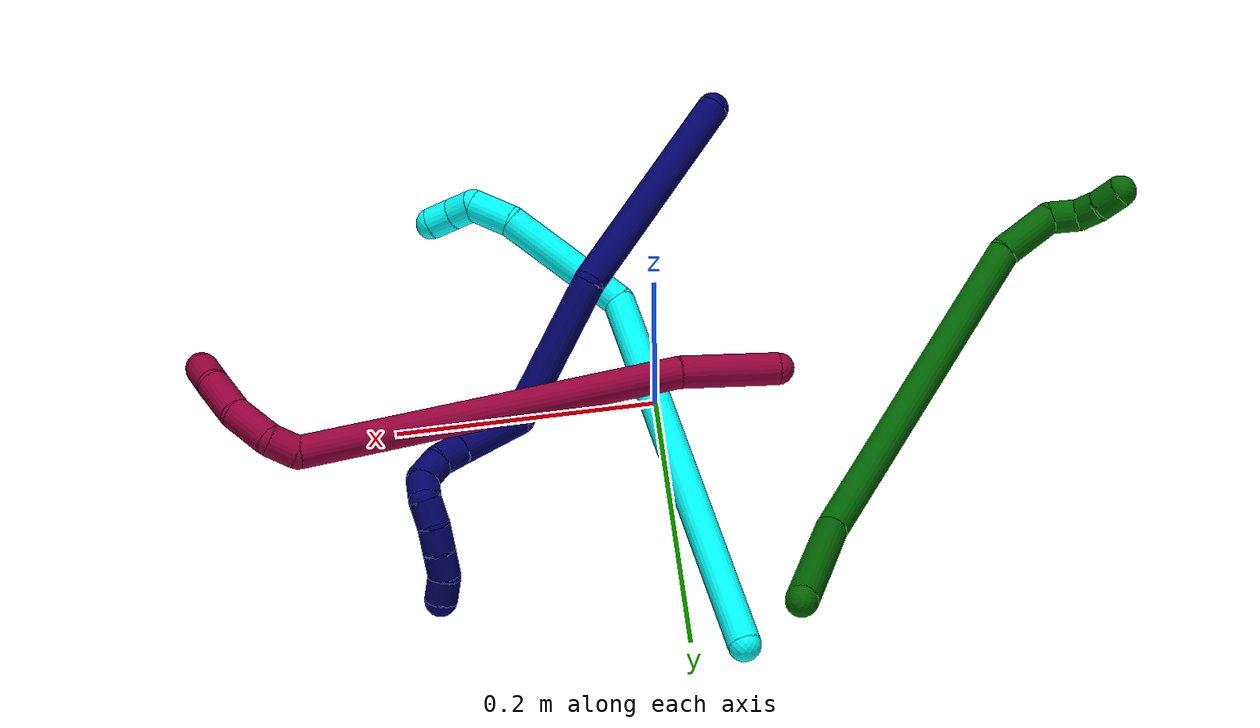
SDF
<sdf version="1.7">
 <world name="default">
  <model name="photoneo_s_sensor">
   <static>1</static>
   <pose>0 0 2 1.57079 1.57079 3.14159</pose>
   <link name="link">
    <inertial><mass>0.1</mass></inertial>
    <sensor name="sensor" type="depth">
     <update_rate>30</update_rate>
     <camera>
      <horizontal_fov>1.22</horizontal_fov>
      <image><width>1920</width><height>1200</height><format>B8G8R8</format></image>
      <clip><near>0.1</near><far>4</far></clip>
      <depth_camera><output>points</output></depth_camera>
     </camera>
     <plugin name="camera_plugin" filename="libgazebo_ros_depth_camera.so">
      <baseline>0.2</baseline>
      <alwaysOn>1</alwaysOn>
      <updateRate>0.0</updateRate>
      <cameraName>camera_ir</cameraName>
      <imageTopicName>/camera/color/image_raw</imageTopicName>
      <cameraInfoTopicName>/camera/color/camera_info</cameraInfoTopicName>
      <depthImageTopicName>/camera/depth/image_raw</depthImageTopicName>
      <depthImageCameraInfoTopicName>/camera/depth/camera_info</depthImageCameraInfoTopicName>
      <pointCloudTopicName>/camera/depth/points</pointCloudTopicName>
      <frameName>fr_optical</frameName>
      <pointCloudCutoff>0.1</pointCloudCutoff>
      <pointCloudCutoffMax>2.0</pointCloudCutoffMax>
      <distortionK1>0</distortionK1>
      <distortionK2>0</distortionK2>
      <distortionK3>0</distortionK3>
      <distortionT1>0</distortionT1>
      <distortionT2>0</distortionT2>
      <CxPrime>0</CxPrime>
      <Cx>0</Cx>
      <Cy>0</Cy>
      <focalLength>0</focalLength>
      <hackBaseline>0</hackBaseline>
     </plugin>
    </sensor>
   </link>
  </model>
  <model name="bin">
   <static>1</static>
   <link name="bottom">
    <collision name="collision-bottom">
     <pose>0 0 -0.01 0 -0 0</pose>
     <geometry><box><size>0.8 0.6 0.02</size></box></geometry>
     <surface>
      <friction><ode><mu>100</mu><mu2>100</mu2></ode></friction>
      <contact><collide_bitmask>65535</collide_bitmask></contact>
     </surface>
    </collision>
   </link>
   <link name="west_wall">
    <collision name="collision-west_wall">
     <pose>-0.41 0 0.1 0 -0 0</pose>
     <geometry><box><size>0.02 0.6 0.2</size></box></geometry>
     <surface>
      <friction><ode><mu>100</mu><mu2>100</mu2></ode></friction>
      <contact><collide_bitmask>65535</collide_bitmask></contact>
     </surface>
    </collision>
   </link>
   <link name="east_wall">
    <collision name="collision-east_wall">
     <pose>0.41 0 0.1 0 -0 0</pose>
     <geometry><box><size>0.02 0.6 0.2</size></box></geometry>
     <surface>
      <friction><ode><mu>100</mu><mu2>100</mu2></ode></friction>
      <contact><collide_bitmask>65535</collide_bitmask></contact>
     </surface>
    </collision>
   </link>
   <link name="south_wall">
    <collision name="collision-south_wall">
     <pose>0 -0.31 0.1 0 -0 0</pose>
     <geometry><box><size>0.8 0.02 0.2</size></box></geometry>
     <surface>
      <friction><ode><mu>100</mu><mu2>100</mu2></ode></friction>
      <contact><collide_bitmask>65535</collide_bitmask></contact>
     </surface>
    </collision>
   </link>
   <link name="north_wall">
    <collision name="collision-north_wall">
     <pose>0 0.31 0.1 0 -0 0</pose>
     <geometry><box><size>0.8 0.02 0.2</size></box></geometry>
     <surface>
      <friction><ode><mu>100</mu><mu2>100</mu2></ode></friction>
      <contact><collide_bitmask>65535</collide_bitmask></contact>
     </surface>
    </collision>
   </link>
  </model>
  <model name="3">
   <static>0</static>
   <link name="3">
    <collision name="collision-cylinder-e_1_1_4">
     <pose>0.051969 -0.143662 0.049265 1.24044 0.329693 0.236528</pose>
     <geometry><cylinder><radius>0.0125</radius><length>0.321039</length></cylinder></geometry>
     <surface>
      <friction><ode><mu>1.16</mu><mu2>1.16</mu2><slip1>0</slip1><slip2>0</slip2></ode></friction>
      <contact><ode><kp>1e+06</kp><kd>1</kd><max_vel>0</max_vel><min_depth>0.001</min_depth></ode></contact>
     </surface>
    </collision>
    <visual name="visual-cylinder-e_1_1_4">
     <pose>0.051969 -0.143662 0.049265 1.24044 0.329693 0.236528</pose>
     <geometry><cylinder><radius>0.0125</radius><length>0.321039</length></cylinder></geometry>
     <material><ambient>0.003922 1 0.996078 1</ambient></material>
    </visual>
    <collision name="collision-cylinder-e_2_4_5">
     <pose>0.147126 -0.316846 0.093467 1.74066 0.964408 1.11119</pose>
     <geometry><cylinder><radius>0.0125</radius><length>0.105118</length></cylinder></geometry>
     <surface>
      <friction><ode><mu>1.16</mu><mu2>1.16</mu2><slip1>0</slip1><slip2>0</slip2></ode></friction>
      <contact><ode><kp>1e+06</kp><kd>1</kd><max_vel>0</max_vel><min_depth>0.001</min_depth></ode></contact>
     </surface>
    </collision>
    <visual name="visual-cylinder-e_2_4_5">
     <pose>0.147126 -0.316846 0.093467 1.74066 0.964408 1.11119</pose>
     <geometry><cylinder><radius>0.0125</radius><length>0.105118</length></cylinder></geometry>
     <material><ambient>0.003922 1 0.996078 1</ambient></material>
    </visual>
    <collision name="collision-cylinder-e_3_5_6">
     <pose>0.201907 -0.357052 0.082745 2.05787 0.764428 1.17756</pose>
     <geometry><cylinder><radius>0.0125</radius><length>0.033501</length></cylinder></geometry>
     <surface>
      <friction><ode><mu>1.16</mu><mu2>1.16</mu2><slip1>0</slip1><slip2>0</slip2></ode></friction>
      <contact><ode><kp>1e+06</kp><kd>1</kd><max_vel>0</max_vel><min_depth>0.001</min_depth></ode></contact>
     </surface>
    </collision>
    <visual name="visual-cylinder-e_3_5_6">
     <pose>0.201907 -0.357052 0.082745 2.05787 0.764428 1.17756</pose>
     <geometry><cylinder><radius>0.0125</radius><length>0.033501</length></cylinder></geometry>
     <material><ambient>0.003922 1 0.996078 1</ambient></material>
    </visual>
    <collision name="collision-cylinder-e_4_6_7">
     <pose>0.214832 -0.373016 0.068661 2.58184 0.133138 0.45584</pose>
     <geometry><cylinder><radius>0.0125</radius><length>0.020063</length></cylinder></geometry>
     <surface>
      <friction><ode><mu>1.16</mu><mu2>1.16</mu2><slip1>0</slip1><slip2>0</slip2></ode></friction>
      <contact><ode><kp>1e+06</kp><kd>1</kd><max_vel>0</max_vel><min_depth>0.001</min_depth></ode></contact>
     </surface>
    </collision>
    <visual name="visual-cylinder-e_4_6_7">
     <pose>0.214832 -0.373016 0.068661 2.58184 0.133138 0.45584</pose>
     <geometry><cylinder><radius>0.0125</radius><length>0.020063</length></cylinder></geometry>
     <material><ambient>0.003922 1 0.996078 1</ambient></material>
    </visual>
    <collision name="collision-cylinder-e_5_7_2">
     <pose>0.218734 -0.382164 0.051222 2.73612 0.256272 1.11977</pose>
     <geometry><cylinder><radius>0.0125</radius><length>0.02028</length></cylinder></geometry>
     <surface>
      <friction><ode><mu>1.16</mu><mu2>1.16</mu2><slip1>0</slip1><slip2>0</slip2></ode></friction>
      <contact><ode><kp>1e+06</kp><kd>1</kd><max_vel>0</max_vel><min_depth>0.001</min_depth></ode></contact>
     </surface>
    </collision>
    <visual name="visual-cylinder-e_5_7_2">
     <pose>0.218734 -0.382164 0.051222 2.73612 0.256272 1.11977</pose>
     <geometry><cylinder><radius>0.0125</radius><length>0.02028</length></cylinder></geometry>
     <material><ambient>0.003922 1 0.996078 1</ambient></material>
    </visual>
    <collision name="collision-sphere-2">
     <pose>0.221304 -0.386033 0.042209 0 -0 0</pose>
     <geometry><sphere><radius>0.0125</radius></sphere></geometry>
     <surface>
      <friction><ode><mu>1.16</mu><mu2>1.16</mu2><slip1>0</slip1><slip2>0</slip2></ode></friction>
      <contact><ode><kp>1e+06</kp><kd>1</kd><max_vel>0</max_vel><min_depth>0.001</min_depth></ode></contact>
     </surface>
    </collision>
    <visual name="visual-sphere-2">
     <pose>0.221304 -0.386033 0.042209 0 -0 0</pose>
     <geometry><sphere><radius>0.0125</radius></sphere></geometry>
     <material><ambient>0.003922 1 0.996078 1</ambient></material>
    </visual>
    <collision name="collision-sphere-7">
     <pose>0.216164 -0.378295 0.060235 0 -0 0</pose>
     <geometry><sphere><radius>0.0125</radius></sphere></geometry>
     <surface>
      <friction><ode><mu>1.16</mu><mu2>1.16</mu2><slip1>0</slip1><slip2>0</slip2></ode></friction>
      <contact><ode><kp>1e+06</kp><kd>1</kd><max_vel>0</max_vel><min_depth>0.001</min_depth></ode></contact>
     </surface>
    </collision>
    <visual name="visual-sphere-7">
     <pose>0.216164 -0.378295 0.060235 0 -0 0</pose>
     <geometry><sphere><radius>0.0125</radius></sphere></geometry>
     <material><ambient>0.003922 1 0.996078 1</ambient></material>
    </visual>
    <collision name="collision-sphere-6">
     <pose>0.213501 -0.367736 0.077086 0 -0 0</pose>
     <geometry><sphere><radius>0.0125</radius></sphere></geometry>
     <surface>
      <friction><ode><mu>1.16</mu><mu2>1.16</mu2><slip1>0</slip1><slip2>0</slip2></ode></friction>
      <contact><ode><kp>1e+06</kp><kd>1</kd><max_vel>0</max_vel><min_depth>0.001</min_depth></ode></contact>
     </surface>
    </collision>
    <visual name="visual-sphere-6">
     <pose>0.213501 -0.367736 0.077086 0 -0 0</pose>
     <geometry><sphere><radius>0.0125</radius></sphere></geometry>
     <material><ambient>0.003922 1 0.996078 1</ambient></material>
    </visual>
    <collision name="collision-sphere-5">
     <pose>0.190314 -0.346368 0.088403 0 -0 0</pose>
     <geometry><sphere><radius>0.0125</radius></sphere></geometry>
     <surface>
      <friction><ode><mu>1.16</mu><mu2>1.16</mu2><slip1>0</slip1><slip2>0</slip2></ode></friction>
      <contact><ode><kp>1e+06</kp><kd>1</kd><max_vel>0</max_vel><min_depth>0.001</min_depth></ode></contact>
     </surface>
    </collision>
    <visual name="visual-sphere-5">
     <pose>0.190314 -0.346368 0.088403 0 -0 0</pose>
     <geometry><sphere><radius>0.0125</radius></sphere></geometry>
     <material><ambient>0.003922 1 0.996078 1</ambient></material>
    </visual>
    <collision name="collision-sphere-1">
     <geometry><sphere><radius>0.0125</radius></sphere></geometry>
     <surface>
      <friction><ode><mu>1.16</mu><mu2>1.16</mu2><slip1>0</slip1><slip2>0</slip2></ode></friction>
      <contact><ode><kp>1e+06</kp><kd>1</kd><max_vel>0</max_vel><min_depth>0.001</min_depth></ode></contact>
     </surface>
    </collision>
    <visual name="visual-sphere-1">
     <geometry><sphere><radius>0.0125</radius></sphere></geometry>
     <material><ambient>0.003922 1 0.996078 1</ambient></material>
    </visual>
    <collision name="collision-sphere-4">
     <pose>0.103937 -0.287323 0.09853 0 -0 0</pose>
     <geometry><sphere><radius>0.0125</radius></sphere></geometry>
     <surface>
      <friction><ode><mu>1.16</mu><mu2>1.16</mu2><slip1>0</slip1><slip2>0</slip2></ode></friction>
      <contact><ode><kp>1e+06</kp><kd>1</kd><max_vel>0</max_vel><min_depth>0.001</min_depth></ode></contact>
     </surface>
    </collision>
    <visual name="visual-sphere-4">
     <pose>0.103937 -0.287323 0.09853 0 -0 0</pose>
     <geometry><sphere><radius>0.0125</radius></sphere></geometry>
     <material><ambient>0.003922 1 0.996078 1</ambient></material>
    </visual>
    <inertial>
     <pose>0.095319 -0.213245 0.061659 0 -0 0</pose>
     <mass>0.5</mass>
     <inertia>
      <ixx>0.003264</ixx>
      <ixy>0</ixy>
      <ixz>0</ixz>
      <iyy>0.001778</iyy>
      <iyz>0</iyz>
      <izz>0.00156</izz>
     </inertia>
    </inertial>
   </link>
   <pose>-0.035346 0.228163 0.053369 0.867489 -0.758294 -0.444719</pose>
  </model>
  <model name="6">
   <static>0</static>
   <link name="6">
    <collision name="collision-cylinder-e_1_1_4">
     <pose>0.006585 -0.031822 -0.049998 2.57478 0.110658 0.375851</pose>
     <geometry><cylinder><radius>0.0125</radius><length>0.119261</length></cylinder></geometry>
     <surface>
      <friction><ode><mu>1.16</mu><mu2>1.16</mu2><slip1>0</slip1><slip2>0</slip2></ode></friction>
      <contact><ode><kp>1e+06</kp><kd>1</kd><max_vel>0</max_vel><min_depth>0.001</min_depth></ode></contact>
     </surface>
    </collision>
    <visual name="visual-cylinder-e_1_1_4">
     <pose>0.006585 -0.031822 -0.049998 2.57478 0.110658 0.375851</pose>
     <geometry><cylinder><radius>0.0125</radius><length>0.119261</length></cylinder></geometry>
     <material><ambient>0 0.392157 0.003922 1</ambient></material>
    </visual>
    <collision name="collision-cylinder-e_2_4_5">
     <pose>-0.04717 -0.169102 -0.157725 2.07166 -0.465163 -0.760503</pose>
     <geometry><cylinder><radius>0.0125</radius><length>0.269035</length></cylinder></geometry>
     <surface>
      <friction><ode><mu>1.16</mu><mu2>1.16</mu2><slip1>0</slip1><slip2>0</slip2></ode></friction>
      <contact><ode><kp>1e+06</kp><kd>1</kd><max_vel>0</max_vel><min_depth>0.001</min_depth></ode></contact>
     </surface>
    </collision>
    <visual name="visual-cylinder-e_2_4_5">
     <pose>-0.04717 -0.169102 -0.157725 2.07166 -0.465163 -0.760503</pose>
     <geometry><cylinder><radius>0.0125</radius><length>0.269035</length></cylinder></geometry>
     <material><ambient>0 0.392157 0.003922 1</ambient></material>
    </visual>
    <collision name="collision-cylinder-e_3_5_6">
     <pose>-0.123327 -0.287508 -0.227918 2.3371 -0.721687 -1.45117</pose>
     <geometry><cylinder><radius>0.0125</radius><length>0.047883</length></cylinder></geometry>
     <surface>
      <friction><ode><mu>1.16</mu><mu2>1.16</mu2><slip1>0</slip1><slip2>0</slip2></ode></friction>
      <contact><ode><kp>1e+06</kp><kd>1</kd><max_vel>0</max_vel><min_depth>0.001</min_depth></ode></contact>
     </surface>
    </collision>
    <visual name="visual-cylinder-e_3_5_6">
     <pose>-0.123327 -0.287508 -0.227918 2.3371 -0.721687 -1.45117</pose>
     <geometry><cylinder><radius>0.0125</radius><length>0.047883</length></cylinder></geometry>
     <material><ambient>0 0.392157 0.003922 1</ambient></material>
    </visual>
    <collision name="collision-cylinder-e_4_6_7">
     <pose>-0.149402 -0.300414 -0.245562 -3.13319 -1.10319 3.12794</pose>
     <geometry><cylinder><radius>0.0125</radius><length>0.022983</length></cylinder></geometry>
     <surface>
      <friction><ode><mu>1.16</mu><mu2>1.16</mu2><slip1>0</slip1><slip2>0</slip2></ode></friction>
      <contact><ode><kp>1e+06</kp><kd>1</kd><max_vel>0</max_vel><min_depth>0.001</min_depth></ode></contact>
     </surface>
    </collision>
    <visual name="visual-cylinder-e_4_6_7">
     <pose>-0.149402 -0.300414 -0.245562 -3.13319 -1.10319 3.12794</pose>
     <geometry><cylinder><radius>0.0125</radius><length>0.022983</length></cylinder></geometry>
     <material><ambient>0 0.392157 0.003922 1</ambient></material>
    </visual>
    <collision name="collision-cylinder-e_5_7_8">
     <pose>-0.16943 -0.301881 -0.248733 0.644813 -1.31899 -0.506858</pose>
     <geometry><cylinder><radius>0.0125</radius><length>0.020176</length></cylinder></geometry>
     <surface>
      <friction><ode><mu>1.16</mu><mu2>1.16</mu2><slip1>0</slip1><slip2>0</slip2></ode></friction>
      <contact><ode><kp>1e+06</kp><kd>1</kd><max_vel>0</max_vel><min_depth>0.001</min_depth></ode></contact>
     </surface>
    </collision>
    <visual name="visual-cylinder-e_5_7_8">
     <pose>-0.16943 -0.301881 -0.248733 0.644813 -1.31899 -0.506858</pose>
     <geometry><cylinder><radius>0.0125</radius><length>0.020176</length></cylinder></geometry>
     <material><ambient>0 0.392157 0.003922 1</ambient></material>
    </visual>
    <collision name="collision-cylinder-e_6_8_2">
     <pose>-0.188788 -0.306974 -0.245321 1.1975 -1.18918 -0.864568</pose>
     <geometry><cylinder><radius>0.0125</radius><length>0.020662</length></cylinder></geometry>
     <surface>
      <friction><ode><mu>1.16</mu><mu2>1.16</mu2><slip1>0</slip1><slip2>0</slip2></ode></friction>
      <contact><ode><kp>1e+06</kp><kd>1</kd><max_vel>0</max_vel><min_depth>0.001</min_depth></ode></contact>
     </surface>
    </collision>
    <visual name="visual-cylinder-e_6_8_2">
     <pose>-0.188788 -0.306974 -0.245321 1.1975 -1.18918 -0.864568</pose>
     <geometry><cylinder><radius>0.0125</radius><length>0.020662</length></cylinder></geometry>
     <material><ambient>0 0.392157 0.003922 1</ambient></material>
    </visual>
    <collision name="collision-sphere-2">
     <pose>-0.198376 -0.310556 -0.243918 0 -0 0</pose>
     <geometry><sphere><radius>0.0125</radius></sphere></geometry>
     <surface>
      <friction><ode><mu>1.16</mu><mu2>1.16</mu2><slip1>0</slip1><slip2>0</slip2></ode></friction>
      <contact><ode><kp>1e+06</kp><kd>1</kd><max_vel>0</max_vel><min_depth>0.001</min_depth></ode></contact>
     </surface>
    </collision>
    <visual name="visual-sphere-2">
     <pose>-0.198376 -0.310556 -0.243918 0 -0 0</pose>
     <geometry><sphere><radius>0.0125</radius></sphere></geometry>
     <material><ambient>0 0.392157 0.003922 1</ambient></material>
    </visual>
    <collision name="collision-sphere-4">
     <pose>0.01317 -0.063644 -0.099995 0 -0 0</pose>
     <geometry><sphere><radius>0.0125</radius></sphere></geometry>
     <surface>
      <friction><ode><mu>1.16</mu><mu2>1.16</mu2><slip1>0</slip1><slip2>0</slip2></ode></friction>
      <contact><ode><kp>1e+06</kp><kd>1</kd><max_vel>0</max_vel><min_depth>0.001</min_depth></ode></contact>
     </surface>
    </collision>
    <visual name="visual-sphere-4">
     <pose>0.01317 -0.063644 -0.099995 0 -0 0</pose>
     <geometry><sphere><radius>0.0125</radius></sphere></geometry>
     <material><ambient>0 0.392157 0.003922 1</ambient></material>
    </visual>
    <collision name="collision-sphere-1">
     <geometry><sphere><radius>0.0125</radius></sphere></geometry>
     <surface>
      <friction><ode><mu>1.16</mu><mu2>1.16</mu2><slip1>0</slip1><slip2>0</slip2></ode></friction>
      <contact><ode><kp>1e+06</kp><kd>1</kd><max_vel>0</max_vel><min_depth>0.001</min_depth></ode></contact>
     </surface>
    </collision>
    <visual name="visual-sphere-1">
     <geometry><sphere><radius>0.0125</radius></sphere></geometry>
     <material><ambient>0 0.392157 0.003922 1</ambient></material>
    </visual>
    <collision name="collision-sphere-8">
     <pose>-0.179201 -0.303391 -0.246724 0 -0 0</pose>
     <geometry><sphere><radius>0.0125</radius></sphere></geometry>
     <surface>
      <friction><ode><mu>1.16</mu><mu2>1.16</mu2><slip1>0</slip1><slip2>0</slip2></ode></friction>
      <contact><ode><kp>1e+06</kp><kd>1</kd><max_vel>0</max_vel><min_depth>0.001</min_depth></ode></contact>
     </surface>
    </collision>
    <visual name="visual-sphere-8">
     <pose>-0.179201 -0.303391 -0.246724 0 -0 0</pose>
     <geometry><sphere><radius>0.0125</radius></sphere></geometry>
     <material><ambient>0 0.392157 0.003922 1</ambient></material>
    </visual>
    <collision name="collision-sphere-5">
     <pose>-0.10751 -0.274559 -0.215455 0 -0 0</pose>
     <geometry><sphere><radius>0.0125</radius></sphere></geometry>
     <surface>
      <friction><ode><mu>1.16</mu><mu2>1.16</mu2><slip1>0</slip1><slip2>0</slip2></ode></friction>
      <contact><ode><kp>1e+06</kp><kd>1</kd><max_vel>0</max_vel><min_depth>0.001</min_depth></ode></contact>
     </surface>
    </collision>
    <visual name="visual-sphere-5">
     <pose>-0.10751 -0.274559 -0.215455 0 -0 0</pose>
     <geometry><sphere><radius>0.0125</radius></sphere></geometry>
     <material><ambient>0 0.392157 0.003922 1</ambient></material>
    </visual>
    <collision name="collision-sphere-6">
     <pose>-0.139144 -0.300457 -0.240382 0 -0 0</pose>
     <geometry><sphere><radius>0.0125</radius></sphere></geometry>
     <surface>
      <friction><ode><mu>1.16</mu><mu2>1.16</mu2><slip1>0</slip1><slip2>0</slip2></ode></friction>
      <contact><ode><kp>1e+06</kp><kd>1</kd><max_vel>0</max_vel><min_depth>0.001</min_depth></ode></contact>
     </surface>
    </collision>
    <visual name="visual-sphere-6">
     <pose>-0.139144 -0.300457 -0.240382 0 -0 0</pose>
     <geometry><sphere><radius>0.0125</radius></sphere></geometry>
     <material><ambient>0 0.392157 0.003922 1</ambient></material>
    </visual>
    <collision name="collision-sphere-7">
     <pose>-0.15966 -0.30037 -0.250742 0 -0 0</pose>
     <geometry><sphere><radius>0.0125</radius></sphere></geometry>
     <surface>
      <friction><ode><mu>1.16</mu><mu2>1.16</mu2><slip1>0</slip1><slip2>0</slip2></ode></friction>
      <contact><ode><kp>1e+06</kp><kd>1</kd><max_vel>0</max_vel><min_depth>0.001</min_depth></ode></contact>
     </surface>
    </collision>
    <visual name="visual-sphere-7">
     <pose>-0.15966 -0.30037 -0.250742 0 -0 0</pose>
     <geometry><sphere><radius>0.0125</radius></sphere></geometry>
     <material><ambient>0 0.392157 0.003922 1</ambient></material>
    </visual>
    <inertial>
     <pose>-0.057127 -0.164788 -0.150082 0 -0 0</pose>
     <mass>0.5</mass>
     <inertia>
      <ixx>0.000216</ixx>
      <ixy>0</ixy>
      <ixz>0</ixz>
      <iyy>-0.001214</iyy>
      <iyz>0</iyz>
      <izz>0.002074</izz>
     </inertia>
    </inertial>
   </link>
   <pose>-0.077249 0.220244 0.105721 -0.286931 0.467075 -0.166276</pose>
  </model>
  <model name="7">
   <static>0</static>
   <link name="7">
    <collision name="collision-cylinder-e_1_1_4">
     <pose>0.046874 0.03759 0.072523 -0.478188 0.520959 -0.129757</pose>
     <geometry><cylinder><radius>0.0125</radius><length>0.18836</length></cylinder></geometry>
     <surface>
      <friction><ode><mu>1.16</mu><mu2>1.16</mu2><slip1>0</slip1><slip2>0</slip2></ode></friction>
      <contact><ode><kp>1e+06</kp><kd>1</kd><max_vel>0</max_vel><min_depth>0.001</min_depth></ode></contact>
     </surface>
    </collision>
    <visual name="visual-cylinder-e_1_1_4">
     <pose>0.046874 0.03759 0.072523 -0.478188 0.520959 -0.129757</pose>
     <geometry><cylinder><radius>0.0125</radius><length>0.18836</length></cylinder></geometry>
     <material><ambient>0.003922 0 0.403922 1</ambient></material>
    </visual>
    <collision name="collision-cylinder-e_2_4_5">
     <pose>0.116739 0.120205 0.174002 -0.999311 0.405647 -0.223576</pose>
     <geometry><cylinder><radius>0.0125</radius><length>0.116521</length></cylinder></geometry>
     <surface>
      <friction><ode><mu>1.16</mu><mu2>1.16</mu2><slip1>0</slip1><slip2>0</slip2></ode></friction>
      <contact><ode><kp>1e+06</kp><kd>1</kd><max_vel>0</max_vel><min_depth>0.001</min_depth></ode></contact>
     </surface>
    </collision>
    <visual name="visual-cylinder-e_2_4_5">
     <pose>0.116739 0.120205 0.174002 -0.999311 0.405647 -0.223576</pose>
     <geometry><cylinder><radius>0.0125</radius><length>0.116521</length></cylinder></geometry>
     <material><ambient>0.003922 0 0.403922 1</ambient></material>
    </visual>
    <collision name="collision-cylinder-e_3_5_6">
     <pose>0.161427 0.169876 0.218441 -0.291425 0.930453 -0.147067</pose>
     <geometry><cylinder><radius>0.0125</radius><length>0.054115</length></cylinder></geometry>
     <surface>
      <friction><ode><mu>1.16</mu><mu2>1.16</mu2><slip1>0</slip1><slip2>0</slip2></ode></friction>
      <contact><ode><kp>1e+06</kp><kd>1</kd><max_vel>0</max_vel><min_depth>0.001</min_depth></ode></contact>
     </surface>
    </collision>
    <visual name="visual-cylinder-e_3_5_6">
     <pose>0.161427 0.169876 0.218441 -0.291425 0.930453 -0.147067</pose>
     <geometry><cylinder><radius>0.0125</radius><length>0.054115</length></cylinder></geometry>
     <material><ambient>0.003922 0 0.403922 1</ambient></material>
    </visual>
    <collision name="collision-cylinder-e_4_6_7">
     <pose>0.191056 0.176347 0.239795 -0.301486 0.911498 -0.148633</pose>
     <geometry><cylinder><radius>0.0125</radius><length>0.020069</length></cylinder></geometry>
     <surface>
      <friction><ode><mu>1.16</mu><mu2>1.16</mu2><slip1>0</slip1><slip2>0</slip2></ode></friction>
      <contact><ode><kp>1e+06</kp><kd>1</kd><max_vel>0</max_vel><min_depth>0.001</min_depth></ode></contact>
     </surface>
    </collision>
    <visual name="visual-cylinder-e_4_6_7">
     <pose>0.191056 0.176347 0.239795 -0.301486 0.911498 -0.148633</pose>
     <geometry><cylinder><radius>0.0125</radius><length>0.020069</length></cylinder></geometry>
     <material><ambient>0.003922 0 0.403922 1</ambient></material>
    </visual>
    <collision name="collision-cylinder-e_5_7_8">
     <pose>0.204896 0.18199 0.253055 -0.476866 0.617608 -0.154765</pose>
     <geometry><cylinder><radius>0.0125</radius><length>0.020405</length></cylinder></geometry>
     <surface>
      <friction><ode><mu>1.16</mu><mu2>1.16</mu2><slip1>0</slip1><slip2>0</slip2></ode></friction>
      <contact><ode><kp>1e+06</kp><kd>1</kd><max_vel>0</max_vel><min_depth>0.001</min_depth></ode></contact>
     </surface>
    </collision>
    <visual name="visual-cylinder-e_5_7_8">
     <pose>0.204896 0.18199 0.253055 -0.476866 0.617608 -0.154765</pose>
     <geometry><cylinder><radius>0.0125</radius><length>0.020405</length></cylinder></geometry>
     <material><ambient>0.003922 0 0.403922 1</ambient></material>
    </visual>
    <collision name="collision-cylinder-e_6_8_9">
     <pose>0.209547 0.188009 0.270154 -0.223018 -0.125624 0.014085</pose>
     <geometry><cylinder><radius>0.0125</radius><length>0.02007</length></cylinder></geometry>
     <surface>
      <friction><ode><mu>1.16</mu><mu2>1.16</mu2><slip1>0</slip1><slip2>0</slip2></ode></friction>
      <contact><ode><kp>1e+06</kp><kd>1</kd><max_vel>0</max_vel><min_depth>0.001</min_depth></ode></contact>
     </surface>
    </collision>
    <visual name="visual-cylinder-e_6_8_9">
     <pose>0.209547 0.188009 0.270154 -0.223018 -0.125624 0.014085</pose>
     <geometry><cylinder><radius>0.0125</radius><length>0.02007</length></cylinder></geometry>
     <material><ambient>0.003922 0 0.403922 1</ambient></material>
    </visual>
    <collision name="collision-cylinder-e_7_9_10">
     <pose>0.204451 0.197578 0.285536 -0.914495 -0.391482 0.194502</pose>
     <geometry><cylinder><radius>0.0125</radius><length>0.020118</length></cylinder></geometry>
     <surface>
      <friction><ode><mu>1.16</mu><mu2>1.16</mu2><slip1>0</slip1><slip2>0</slip2></ode></friction>
      <contact><ode><kp>1e+06</kp><kd>1</kd><max_vel>0</max_vel><min_depth>0.001</min_depth></ode></contact>
     </surface>
    </collision>
    <visual name="visual-cylinder-e_7_9_10">
     <pose>0.204451 0.197578 0.285536 -0.914495 -0.391482 0.194502</pose>
     <geometry><cylinder><radius>0.0125</radius><length>0.020118</length></cylinder></geometry>
     <material><ambient>0.003922 0 0.403922 1</ambient></material>
    </visual>
    <collision name="collision-cylinder-e_8_10_11">
     <pose>0.197834 0.2139 0.295101 -1.16094 -0.277267 0.182508</pose>
     <geometry><cylinder><radius>0.0125</radius><length>0.020304</length></cylinder></geometry>
     <surface>
      <friction><ode><mu>1.16</mu><mu2>1.16</mu2><slip1>0</slip1><slip2>0</slip2></ode></friction>
      <contact><ode><kp>1e+06</kp><kd>1</kd><max_vel>0</max_vel><min_depth>0.001</min_depth></ode></contact>
     </surface>
    </collision>
    <visual name="visual-cylinder-e_8_10_11">
     <pose>0.197834 0.2139 0.295101 -1.16094 -0.277267 0.182508</pose>
     <geometry><cylinder><radius>0.0125</radius><length>0.020304</length></cylinder></geometry>
     <material><ambient>0.003922 0 0.403922 1</ambient></material>
    </visual>
    <collision name="collision-cylinder-e_9_11_12">
     <pose>0.192386 0.232089 0.301768 -1.2787 -0.270079 0.20136</pose>
     <geometry><cylinder><radius>0.0125</radius><length>0.020009</length></cylinder></geometry>
     <surface>
      <friction><ode><mu>1.16</mu><mu2>1.16</mu2><slip1>0</slip1><slip2>0</slip2></ode></friction>
      <contact><ode><kp>1e+06</kp><kd>1</kd><max_vel>0</max_vel><min_depth>0.001</min_depth></ode></contact>
     </surface>
    </collision>
    <visual name="visual-cylinder-e_9_11_12">
     <pose>0.192386 0.232089 0.301768 -1.2787 -0.270079 0.20136</pose>
     <geometry><cylinder><radius>0.0125</radius><length>0.020009</length></cylinder></geometry>
     <material><ambient>0.003922 0 0.403922 1</ambient></material>
    </visual>
    <collision name="collision-cylinder-e_10_12_2">
     <pose>0.190263 0.251101 0.306632 -1.36049 0.054611 -0.044187</pose>
     <geometry><cylinder><radius>0.0125</radius><length>0.020028</length></cylinder></geometry>
     <surface>
      <friction><ode><mu>1.16</mu><mu2>1.16</mu2><slip1>0</slip1><slip2>0</slip2></ode></friction>
      <contact><ode><kp>1e+06</kp><kd>1</kd><max_vel>0</max_vel><min_depth>0.001</min_depth></ode></contact>
     </surface>
    </collision>
    <visual name="visual-cylinder-e_10_12_2">
     <pose>0.190263 0.251101 0.306632 -1.36049 0.054611 -0.044187</pose>
     <geometry><cylinder><radius>0.0125</radius><length>0.020028</length></cylinder></geometry>
     <material><ambient>0.003922 0 0.403922 1</ambient></material>
    </visual>
    <collision name="collision-sphere-2">
     <pose>0.19081 0.26088 0.30872 0 -0 0</pose>
     <geometry><sphere><radius>0.0125</radius></sphere></geometry>
     <surface>
      <friction><ode><mu>1.16</mu><mu2>1.16</mu2><slip1>0</slip1><slip2>0</slip2></ode></friction>
      <contact><ode><kp>1e+06</kp><kd>1</kd><max_vel>0</max_vel><min_depth>0.001</min_depth></ode></contact>
     </surface>
    </collision>
    <visual name="visual-sphere-2">
     <pose>0.19081 0.26088 0.30872 0 -0 0</pose>
     <geometry><sphere><radius>0.0125</radius></sphere></geometry>
     <material><ambient>0.003922 0 0.403922 1</ambient></material>
    </visual>
    <collision name="collision-sphere-12">
     <pose>0.189717 0.241322 0.304545 0 -0 0</pose>
     <geometry><sphere><radius>0.0125</radius></sphere></geometry>
     <surface>
      <friction><ode><mu>1.16</mu><mu2>1.16</mu2><slip1>0</slip1><slip2>0</slip2></ode></friction>
      <contact><ode><kp>1e+06</kp><kd>1</kd><max_vel>0</max_vel><min_depth>0.001</min_depth></ode></contact>
     </surface>
    </collision>
    <visual name="visual-sphere-12">
     <pose>0.189717 0.241322 0.304545 0 -0 0</pose>
     <geometry><sphere><radius>0.0125</radius></sphere></geometry>
     <material><ambient>0.003922 0 0.403922 1</ambient></material>
    </visual>
    <collision name="collision-sphere-11">
     <pose>0.195055 0.222855 0.298992 0 -0 0</pose>
     <geometry><sphere><radius>0.0125</radius></sphere></geometry>
     <surface>
      <friction><ode><mu>1.16</mu><mu2>1.16</mu2><slip1>0</slip1><slip2>0</slip2></ode></friction>
      <contact><ode><kp>1e+06</kp><kd>1</kd><max_vel>0</max_vel><min_depth>0.001</min_depth></ode></contact>
     </surface>
    </collision>
    <visual name="visual-sphere-11">
     <pose>0.195055 0.222855 0.298992 0 -0 0</pose>
     <geometry><sphere><radius>0.0125</radius></sphere></geometry>
     <material><ambient>0.003922 0 0.403922 1</ambient></material>
    </visual>
    <collision name="collision-sphere-10">
     <pose>0.200613 0.204944 0.29121 0 -0 0</pose>
     <geometry><sphere><radius>0.0125</radius></sphere></geometry>
     <surface>
      <friction><ode><mu>1.16</mu><mu2>1.16</mu2><slip1>0</slip1><slip2>0</slip2></ode></friction>
      <contact><ode><kp>1e+06</kp><kd>1</kd><max_vel>0</max_vel><min_depth>0.001</min_depth></ode></contact>
     </surface>
    </collision>
    <visual name="visual-sphere-10">
     <pose>0.200613 0.204944 0.29121 0 -0 0</pose>
     <geometry><sphere><radius>0.0125</radius></sphere></geometry>
     <material><ambient>0.003922 0 0.403922 1</ambient></material>
    </visual>
    <collision name="collision-sphere-9">
     <pose>0.208289 0.190211 0.279863 0 -0 0</pose>
     <geometry><sphere><radius>0.0125</radius></sphere></geometry>
     <surface>
      <friction><ode><mu>1.16</mu><mu2>1.16</mu2><slip1>0</slip1><slip2>0</slip2></ode></friction>
      <contact><ode><kp>1e+06</kp><kd>1</kd><max_vel>0</max_vel><min_depth>0.001</min_depth></ode></contact>
     </surface>
    </collision>
    <visual name="visual-sphere-9">
     <pose>0.208289 0.190211 0.279863 0 -0 0</pose>
     <geometry><sphere><radius>0.0125</radius></sphere></geometry>
     <material><ambient>0.003922 0 0.403922 1</ambient></material>
    </visual>
    <collision name="collision-sphere-4">
     <pose>0.093749 0.075179 0.145047 0 -0 0</pose>
     <geometry><sphere><radius>0.0125</radius></sphere></geometry>
     <surface>
      <friction><ode><mu>1.16</mu><mu2>1.16</mu2><slip1>0</slip1><slip2>0</slip2></ode></friction>
      <contact><ode><kp>1e+06</kp><kd>1</kd><max_vel>0</max_vel><min_depth>0.001</min_depth></ode></contact>
     </surface>
    </collision>
    <visual name="visual-sphere-4">
     <pose>0.093749 0.075179 0.145047 0 -0 0</pose>
     <geometry><sphere><radius>0.0125</radius></sphere></geometry>
     <material><ambient>0.003922 0 0.403922 1</ambient></material>
    </visual>
    <collision name="collision-sphere-1">
     <geometry><sphere><radius>0.0125</radius></sphere></geometry>
     <surface>
      <friction><ode><mu>1.16</mu><mu2>1.16</mu2><slip1>0</slip1><slip2>0</slip2></ode></friction>
      <contact><ode><kp>1e+06</kp><kd>1</kd><max_vel>0</max_vel><min_depth>0.001</min_depth></ode></contact>
     </surface>
    </collision>
    <visual name="visual-sphere-1">
     <geometry><sphere><radius>0.0125</radius></sphere></geometry>
     <material><ambient>0.003922 0 0.403922 1</ambient></material>
    </visual>
    <collision name="collision-sphere-8">
     <pose>0.210804 0.185807 0.260445 0 -0 0</pose>
     <geometry><sphere><radius>0.0125</radius></sphere></geometry>
     <surface>
      <friction><ode><mu>1.16</mu><mu2>1.16</mu2><slip1>0</slip1><slip2>0</slip2></ode></friction>
      <contact><ode><kp>1e+06</kp><kd>1</kd><max_vel>0</max_vel><min_depth>0.001</min_depth></ode></contact>
     </surface>
    </collision>
    <visual name="visual-sphere-8">
     <pose>0.210804 0.185807 0.260445 0 -0 0</pose>
     <geometry><sphere><radius>0.0125</radius></sphere></geometry>
     <material><ambient>0.003922 0 0.403922 1</ambient></material>
    </visual>
    <collision name="collision-sphere-5">
     <pose>0.13973 0.165232 0.202957 0 -0 0</pose>
     <geometry><sphere><radius>0.0125</radius></sphere></geometry>
     <surface>
      <friction><ode><mu>1.16</mu><mu2>1.16</mu2><slip1>0</slip1><slip2>0</slip2></ode></friction>
      <contact><ode><kp>1e+06</kp><kd>1</kd><max_vel>0</max_vel><min_depth>0.001</min_depth></ode></contact>
     </surface>
    </collision>
    <visual name="visual-sphere-5">
     <pose>0.13973 0.165232 0.202957 0 -0 0</pose>
     <geometry><sphere><radius>0.0125</radius></sphere></geometry>
     <material><ambient>0.003922 0 0.403922 1</ambient></material>
    </visual>
    <collision name="collision-sphere-6">
     <pose>0.183124 0.174521 0.233926 0 -0 0</pose>
     <geometry><sphere><radius>0.0125</radius></sphere></geometry>
     <surface>
      <friction><ode><mu>1.16</mu><mu2>1.16</mu2><slip1>0</slip1><slip2>0</slip2></ode></friction>
      <contact><ode><kp>1e+06</kp><kd>1</kd><max_vel>0</max_vel><min_depth>0.001</min_depth></ode></contact>
     </surface>
    </collision>
    <visual name="visual-sphere-6">
     <pose>0.183124 0.174521 0.233926 0 -0 0</pose>
     <geometry><sphere><radius>0.0125</radius></sphere></geometry>
     <material><ambient>0.003922 0 0.403922 1</ambient></material>
    </visual>
    <collision name="collision-sphere-7">
     <pose>0.198988 0.178172 0.245665 0 -0 0</pose>
     <geometry><sphere><radius>0.0125</radius></sphere></geometry>
     <surface>
      <friction><ode><mu>1.16</mu><mu2>1.16</mu2><slip1>0</slip1><slip2>0</slip2></ode></friction>
      <contact><ode><kp>1e+06</kp><kd>1</kd><max_vel>0</max_vel><min_depth>0.001</min_depth></ode></contact>
     </surface>
    </collision>
    <visual name="visual-sphere-7">
     <pose>0.198988 0.178172 0.245665 0 -0 0</pose>
     <geometry><sphere><radius>0.0125</radius></sphere></geometry>
     <material><ambient>0.003922 0 0.403922 1</ambient></material>
    </visual>
    <inertial>
     <pose>0.118357 0.118593 0.17014 0 -0 0</pose>
     <mass>0.5</mass>
     <inertia>
      <ixx>0.000549</ixx>
      <ixy>0</ixy>
      <ixz>0</ixz>
      <iyy>0.000545</iyy>
      <iyz>0</iyz>
      <izz>-0.000663</izz>
     </inertia>
    </inertial>
   </link>
   <pose>-0.074764 -0.216638 0.06648 -1.06464 -0.120498 -0.150257</pose>
  </model>
  <model name="8">
   <static>0</static>
   <link name="8">
    <collision name="collision-cylinder-e_1_1_4">
     <pose>0.023294 -0.031148 0.000363 1.55915 0.642097 0.635154</pose>
     <geometry><cylinder><radius>0.0125</radius><length>0.077794</length></cylinder></geometry>
     <surface>
      <friction><ode><mu>1.16</mu><mu2>1.16</mu2><slip1>0</slip1><slip2>0</slip2></ode></friction>
      <contact><ode><kp>1e+06</kp><kd>1</kd><max_vel>0</max_vel><min_depth>0.001</min_depth></ode></contact>
     </surface>
    </collision>
    <visual name="visual-cylinder-e_1_1_4">
     <pose>0.023294 -0.031148 0.000363 1.55915 0.642097 0.635154</pose>
     <geometry><cylinder><radius>0.0125</radius><length>0.077794</length></cylinder></geometry>
     <material><ambient>0.584314 0 0.227451 1</ambient></material>
    </visual>
    <collision name="collision-cylinder-e_2_4_5">
     <pose>0.114872 -0.19512 -0.001225 1.58548 0.474812 0.481571</pose>
     <geometry><cylinder><radius>0.0125</radius><length>0.29872</length></cylinder></geometry>
     <surface>
      <friction><ode><mu>1.16</mu><mu2>1.16</mu2><slip1>0</slip1><slip2>0</slip2></ode></friction>
      <contact><ode><kp>1e+06</kp><kd>1</kd><max_vel>0</max_vel><min_depth>0.001</min_depth></ode></contact>
     </surface>
    </collision>
    <visual name="visual-cylinder-e_2_4_5">
     <pose>0.114872 -0.19512 -0.001225 1.58548 0.474812 0.481571</pose>
     <geometry><cylinder><radius>0.0125</radius><length>0.29872</length></cylinder></geometry>
     <material><ambient>0.584314 0 0.227451 1</ambient></material>
    </visual>
    <collision name="collision-cylinder-e_3_5_6">
     <pose>0.193387 -0.332983 -0.002278 1.39434 1.10687 0.954977</pose>
     <geometry><cylinder><radius>0.0125</radius><length>0.022883</length></cylinder></geometry>
     <surface>
      <friction><ode><mu>1.16</mu><mu2>1.16</mu2><slip1>0</slip1><slip2>0</slip2></ode></friction>
      <contact><ode><kp>1e+06</kp><kd>1</kd><max_vel>0</max_vel><min_depth>0.001</min_depth></ode></contact>
     </surface>
    </collision>
    <visual name="visual-cylinder-e_3_5_6">
     <pose>0.193387 -0.332983 -0.002278 1.39434 1.10687 0.954977</pose>
     <geometry><cylinder><radius>0.0125</radius><length>0.022883</length></cylinder></geometry>
     <material><ambient>0.584314 0 0.227451 1</ambient></material>
    </visual>
    <collision name="collision-cylinder-e_4_6_7">
     <pose>0.219263 -0.340034 0.007992 0.211355 1.02114 0.118684</pose>
     <geometry><cylinder><radius>0.0125</radius><length>0.036691</length></cylinder></geometry>
     <surface>
      <friction><ode><mu>1.16</mu><mu2>1.16</mu2><slip1>0</slip1><slip2>0</slip2></ode></friction>
      <contact><ode><kp>1e+06</kp><kd>1</kd><max_vel>0</max_vel><min_depth>0.001</min_depth></ode></contact>
     </surface>
    </collision>
    <visual name="visual-cylinder-e_4_6_7">
     <pose>0.219263 -0.340034 0.007992 0.211355 1.02114 0.118684</pose>
     <geometry><cylinder><radius>0.0125</radius><length>0.036691</length></cylinder></geometry>
     <material><ambient>0.584314 0 0.227451 1</ambient></material>
    </visual>
    <collision name="collision-cylinder-e_5_7_8">
     <pose>0.248469 -0.339827 0.028967 -0.188761 0.854159 -0.086106</pose>
     <geometry><cylinder><radius>0.0125</radius><length>0.035975</length></cylinder></geometry>
     <surface>
      <friction><ode><mu>1.16</mu><mu2>1.16</mu2><slip1>0</slip1><slip2>0</slip2></ode></friction>
      <contact><ode><kp>1e+06</kp><kd>1</kd><max_vel>0</max_vel><min_depth>0.001</min_depth></ode></contact>
     </surface>
    </collision>
    <visual name="visual-cylinder-e_5_7_8">
     <pose>0.248469 -0.339827 0.028967 -0.188761 0.854159 -0.086106</pose>
     <geometry><cylinder><radius>0.0125</radius><length>0.035975</length></cylinder></geometry>
     <material><ambient>0.584314 0 0.227451 1</ambient></material>
    </visual>
    <collision name="collision-cylinder-e_6_8_2">
     <pose>0.26937 -0.335306 0.052233 -0.195066 0.553106 -0.055527</pose>
     <geometry><cylinder><radius>0.0125</radius><length>0.027937</length></cylinder></geometry>
     <surface>
      <friction><ode><mu>1.16</mu><mu2>1.16</mu2><slip1>0</slip1><slip2>0</slip2></ode></friction>
      <contact><ode><kp>1e+06</kp><kd>1</kd><max_vel>0</max_vel><min_depth>0.001</min_depth></ode></contact>
     </surface>
    </collision>
    <visual name="visual-cylinder-e_6_8_2">
     <pose>0.26937 -0.335306 0.052233 -0.195066 0.553106 -0.055527</pose>
     <geometry><cylinder><radius>0.0125</radius><length>0.027937</length></cylinder></geometry>
     <material><ambient>0.584314 0 0.227451 1</ambient></material>
    </visual>
    <collision name="collision-sphere-2">
     <pose>0.276708 -0.333003 0.063893 0 -0 0</pose>
     <geometry><sphere><radius>0.0125</radius></sphere></geometry>
     <surface>
      <friction><ode><mu>1.16</mu><mu2>1.16</mu2><slip1>0</slip1><slip2>0</slip2></ode></friction>
      <contact><ode><kp>1e+06</kp><kd>1</kd><max_vel>0</max_vel><min_depth>0.001</min_depth></ode></contact>
     </surface>
    </collision>
    <visual name="visual-sphere-2">
     <pose>0.276708 -0.333003 0.063893 0 -0 0</pose>
     <geometry><sphere><radius>0.0125</radius></sphere></geometry>
     <material><ambient>0.584314 0 0.227451 1</ambient></material>
    </visual>
    <collision name="collision-sphere-4">
     <pose>0.046589 -0.062296 0.000726 0 -0 0</pose>
     <geometry><sphere><radius>0.0125</radius></sphere></geometry>
     <surface>
      <friction><ode><mu>1.16</mu><mu2>1.16</mu2><slip1>0</slip1><slip2>0</slip2></ode></friction>
      <contact><ode><kp>1e+06</kp><kd>1</kd><max_vel>0</max_vel><min_depth>0.001</min_depth></ode></contact>
     </surface>
    </collision>
    <visual name="visual-sphere-4">
     <pose>0.046589 -0.062296 0.000726 0 -0 0</pose>
     <geometry><sphere><radius>0.0125</radius></sphere></geometry>
     <material><ambient>0.584314 0 0.227451 1</ambient></material>
    </visual>
    <collision name="collision-sphere-1">
     <geometry><sphere><radius>0.0125</radius></sphere></geometry>
     <surface>
      <friction><ode><mu>1.16</mu><mu2>1.16</mu2><slip1>0</slip1><slip2>0</slip2></ode></friction>
      <contact><ode><kp>1e+06</kp><kd>1</kd><max_vel>0</max_vel><min_depth>0.001</min_depth></ode></contact>
     </surface>
    </collision>
    <visual name="visual-sphere-1">
     <geometry><sphere><radius>0.0125</radius></sphere></geometry>
     <material><ambient>0.584314 0 0.227451 1</ambient></material>
    </visual>
    <collision name="collision-sphere-8">
     <pose>0.262032 -0.33761 0.040572 0 -0 0</pose>
     <geometry><sphere><radius>0.0125</radius></sphere></geometry>
     <surface>
      <friction><ode><mu>1.16</mu><mu2>1.16</mu2><slip1>0</slip1><slip2>0</slip2></ode></friction>
      <contact><ode><kp>1e+06</kp><kd>1</kd><max_vel>0</max_vel><min_depth>0.001</min_depth></ode></contact>
     </surface>
    </collision>
    <visual name="visual-sphere-8">
     <pose>0.262032 -0.33761 0.040572 0 -0 0</pose>
     <geometry><sphere><radius>0.0125</radius></sphere></geometry>
     <material><ambient>0.584314 0 0.227451 1</ambient></material>
    </visual>
    <collision name="collision-sphere-5">
     <pose>0.183155 -0.327943 -0.003176 0 -0 0</pose>
     <geometry><sphere><radius>0.0125</radius></sphere></geometry>
     <surface>
      <friction><ode><mu>1.16</mu><mu2>1.16</mu2><slip1>0</slip1><slip2>0</slip2></ode></friction>
      <contact><ode><kp>1e+06</kp><kd>1</kd><max_vel>0</max_vel><min_depth>0.001</min_depth></ode></contact>
     </surface>
    </collision>
    <visual name="visual-sphere-5">
     <pose>0.183155 -0.327943 -0.003176 0 -0 0</pose>
     <geometry><sphere><radius>0.0125</radius></sphere></geometry>
     <material><ambient>0.584314 0 0.227451 1</ambient></material>
    </visual>
    <collision name="collision-sphere-6">
     <pose>0.203619 -0.338023 -0.001379 0 -0 0</pose>
     <geometry><sphere><radius>0.0125</radius></sphere></geometry>
     <surface>
      <friction><ode><mu>1.16</mu><mu2>1.16</mu2><slip1>0</slip1><slip2>0</slip2></ode></friction>
      <contact><ode><kp>1e+06</kp><kd>1</kd><max_vel>0</max_vel><min_depth>0.001</min_depth></ode></contact>
     </surface>
    </collision>
    <visual name="visual-sphere-6">
     <pose>0.203619 -0.338023 -0.001379 0 -0 0</pose>
     <geometry><sphere><radius>0.0125</radius></sphere></geometry>
     <material><ambient>0.584314 0 0.227451 1</ambient></material>
    </visual>
    <collision name="collision-sphere-7">
     <pose>0.234906 -0.342044 0.017362 0 -0 0</pose>
     <geometry><sphere><radius>0.0125</radius></sphere></geometry>
     <surface>
      <friction><ode><mu>1.16</mu><mu2>1.16</mu2><slip1>0</slip1><slip2>0</slip2></ode></friction>
      <contact><ode><kp>1e+06</kp><kd>1</kd><max_vel>0</max_vel><min_depth>0.001</min_depth></ode></contact>
     </surface>
    </collision>
    <visual name="visual-sphere-7">
     <pose>0.234906 -0.342044 0.017362 0 -0 0</pose>
     <geometry><sphere><radius>0.0125</radius></sphere></geometry>
     <material><ambient>0.584314 0 0.227451 1</ambient></material>
    </visual>
    <inertial>
     <pose>0.130122 -0.204796 0.004809 0 -0 0</pose>
     <mass>0.5</mass>
     <inertia>
      <ixx>0.002759</ixx>
      <ixy>0</ixy>
      <ixz>0</ixz>
      <iyy>0.001389</iyy>
      <iyz>0</iyz>
      <izz>0.000967</izz>
     </inertia>
    </inertial>
   </link>
   <pose>-0.09529 -0.001752 0.031527 3.08521 -0.41369 -0.948685</pose>
  </model>
 </world>
</sdf>
